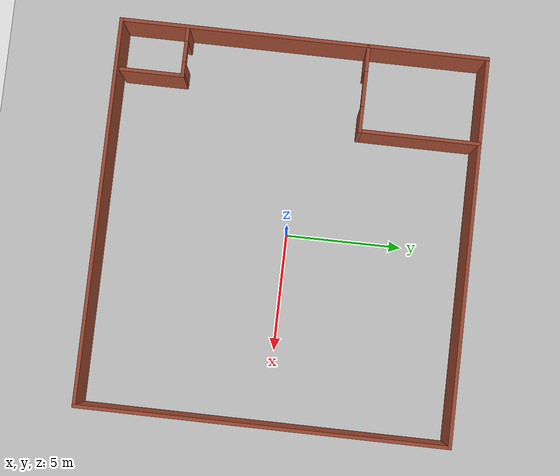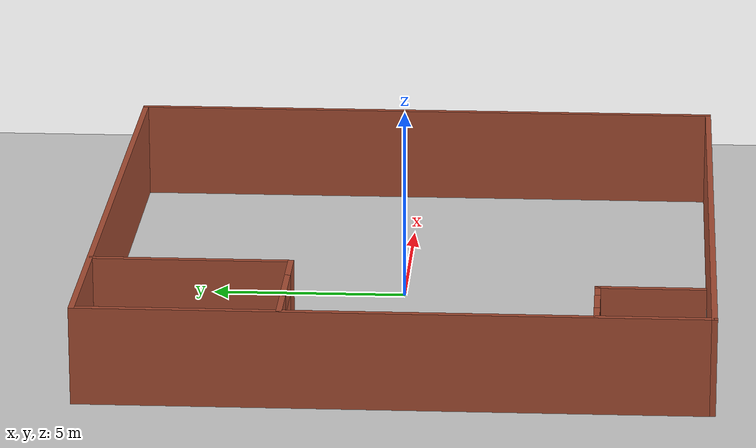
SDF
<sdf version="1.7">
 <world name="default">
  <light name="sun" type="directional">
   <pose>0 0 10 0 -0 0</pose>
   <diffuse>0.8 0.8 0.8 1</diffuse>
   <specular>0.2 0.2 0.2 1</specular>
   <attenuation>
    <range>1000</range>
    <constant>0.9</constant>
    <linear>0.01</linear>
    <quadratic>0.001</quadratic>
   </attenuation>
   <direction>-0.5 0.1 -0.9</direction>
   <spot><inner_angle>0</inner_angle><outer_angle>0</outer_angle><falloff>0</falloff></spot>
  </light>
  <model name="ground_plane">
   <static>1</static>
   <link name="link">
    <collision name="collision">
     <geometry><plane><normal>0 0 1</normal><size>100 100</size></plane></geometry>
     <surface>
      <contact><collide_bitmask>65535</collide_bitmask></contact>
      <friction><ode><mu>100</mu><mu2>50</mu2></ode></friction>
     </surface>
    </collision>
    <visual name="visual">
     <cast_shadows>0</cast_shadows>
     <geometry><plane><normal>0 0 1</normal><size>100 100</size></plane></geometry>
     <material>
      <script><uri>file://media/materials/scripts/gazebo.material</uri><name>Gazebo/Grey</name></script>
     </material>
    </visual>
   </link>
  </model>
  <gravity>0 0 -9.8</gravity>
  <magnetic_field>6e-06 2.3e-05 -4.2e-05</magnetic_field>
  <atmosphere type="adiabatic"/>
  <physics type="ode">
   <max_step_size>0.001</max_step_size>
   <real_time_factor>1</real_time_factor>
   <real_time_update_rate>1000</real_time_update_rate>
  </physics>
  <scene><ambient>0.4 0.4 0.4 1</ambient><background>0.7 0.7 0.7 1</background><shadows>1</shadows></scene>
  <spherical_coordinates>
   <surface_model>EARTH_WGS84</surface_model>
   <latitude_deg>0</latitude_deg>
   <longitude_deg>0</longitude_deg>
   <elevation>0</elevation>
   <heading_deg>0</heading_deg>
  </spherical_coordinates>
  <model name="test">
   <link name="Wall_16">
    <pose>8.175 0 0 0 -0 1.5708</pose>
    <inertial>
     <mass>1</mass>
     <inertia><ixx>1</ixx><ixy>0</ixy><ixz>0</ixz><iyy>1</iyy><iyz>0</iyz><izz>1</izz></inertia>
    </inertial>
    <visual name="Wall_16_Visual">
     <pose>0 0 1.25 0 -0 0</pose>
     <geometry><box><size>15.75 0.15 2.5</size></box></geometry>
     <material>
      <script><uri>file://media/materials/scripts/gazebo.material</uri><name>Gazebo/Bricks</name></script>
      <ambient>1 1 1 1</ambient>
      <shader type="pixel"><normal_map>__default__</normal_map></shader>
      <diffuse>1 1 1 1</diffuse>
      <specular>0.2 0.2 0.2 1</specular>
      <emissive>0 0 0 1</emissive>
     </material>
     <meta><layer>0</layer></meta>
    </visual>
    <collision name="Wall_16_Collision">
     <pose>0 0 1.25 0 -0 0</pose>
     <geometry><box><size>15.75 0.15 2.5</size></box></geometry>
     <surface>
      <friction>
       <ode><mu>1</mu><mu2>1</mu2><fdir1>0 0 0</fdir1><slip1>0</slip1><slip2>0</slip2></ode>
       <torsional>
        <coefficient>1</coefficient>
        <patch_radius>0</patch_radius>
        <surface_radius>0</surface_radius>
        <use_patch_radius>1</use_patch_radius>
        <ode><slip>0</slip></ode>
       </torsional>
      </friction>
      <bounce><restitution_coefficient>0</restitution_coefficient><threshold>1e+06</threshold></bounce>
      <contact>
       <collide_without_contact>0</collide_without_contact>
       <collide_without_contact_bitmask>1</collide_without_contact_bitmask>
       <collide_bitmask>1</collide_bitmask>
       <ode>
        <soft_cfm>0</soft_cfm>
        <soft_erp>0.2</soft_erp>
        <kp>1e+13</kp>
        <kd>1</kd>
        <max_vel>0.01</max_vel>
        <min_depth>0</min_depth>
       </ode>
       <bullet>
        <split_impulse>1</split_impulse>
        <split_impulse_penetration_threshold>-0.01</split_impulse_penetration_threshold>
        <soft_cfm>0</soft_cfm>
        <soft_erp>0.2</soft_erp>
        <kp>1e+13</kp>
        <kd>1</kd>
       </bullet>
      </contact>
     </surface>
    </collision>
   </link>
   <link name="Wall_24">
    <pose>0 7.8 0 0 -0 0</pose>
    <inertial>
     <mass>1</mass>
     <inertia><ixx>1</ixx><ixy>0</ixy><ixz>0</ixz><iyy>1</iyy><iyz>0</iyz><izz>1</izz></inertia>
    </inertial>
    <visual name="Wall_24_Visual">
     <pose>0 0 1.25 0 -0 0</pose>
     <geometry><box><size>16.5 0.15 2.5</size></box></geometry>
     <material>
      <script><uri>file://media/materials/scripts/gazebo.material</uri><name>Gazebo/Bricks</name></script>
      <ambient>1 1 1 1</ambient>
      <shader type="pixel"><normal_map>__default__</normal_map></shader>
      <diffuse>1 1 1 1</diffuse>
      <specular>0.2 0.2 0.2 1</specular>
      <emissive>0 0 0 1</emissive>
     </material>
     <meta><layer>0</layer></meta>
    </visual>
    <collision name="Wall_24_Collision">
     <pose>0 0 1.25 0 -0 0</pose>
     <geometry><box><size>16.5 0.15 2.5</size></box></geometry>
     <surface>
      <friction>
       <ode><mu>1</mu><mu2>1</mu2><fdir1>0 0 0</fdir1><slip1>0</slip1><slip2>0</slip2></ode>
       <torsional>
        <coefficient>1</coefficient>
        <patch_radius>0</patch_radius>
        <surface_radius>0</surface_radius>
        <use_patch_radius>1</use_patch_radius>
        <ode><slip>0</slip></ode>
       </torsional>
      </friction>
      <bounce><restitution_coefficient>0</restitution_coefficient><threshold>1e+06</threshold></bounce>
      <contact>
       <collide_without_contact>0</collide_without_contact>
       <collide_without_contact_bitmask>1</collide_without_contact_bitmask>
       <collide_bitmask>1</collide_bitmask>
       <ode>
        <soft_cfm>0</soft_cfm>
        <soft_erp>0.2</soft_erp>
        <kp>1e+13</kp>
        <kd>1</kd>
        <max_vel>0.01</max_vel>
        <min_depth>0</min_depth>
       </ode>
       <bullet>
        <split_impulse>1</split_impulse>
        <split_impulse_penetration_threshold>-0.01</split_impulse_penetration_threshold>
        <soft_cfm>0</soft_cfm>
        <soft_erp>0.2</soft_erp>
        <kp>1e+13</kp>
        <kd>1</kd>
       </bullet>
      </contact>
     </surface>
    </collision>
   </link>
   <link name="Wall_27">
    <pose>0 -7.8 0 0 -0 3.14159</pose>
    <inertial>
     <mass>1</mass>
     <inertia><ixx>1</ixx><ixy>0</ixy><ixz>0</ixz><iyy>1</iyy><iyz>0</iyz><izz>1</izz></inertia>
    </inertial>
    <visual name="Wall_27_Visual">
     <pose>0 0 1.25 0 -0 0</pose>
     <geometry><box><size>16.5 0.15 2.5</size></box></geometry>
     <material>
      <script><uri>file://media/materials/scripts/gazebo.material</uri><name>Gazebo/Bricks</name></script>
      <ambient>1 1 1 1</ambient>
      <shader type="pixel"><normal_map>__default__</normal_map></shader>
      <diffuse>1 1 1 1</diffuse>
      <specular>0.2 0.2 0.2 1</specular>
      <emissive>0 0 0 1</emissive>
     </material>
     <meta><layer>0</layer></meta>
    </visual>
    <collision name="Wall_27_Collision">
     <pose>0 0 1.25 0 -0 0</pose>
     <geometry><box><size>16.5 0.15 2.5</size></box></geometry>
     <surface>
      <friction>
       <ode><mu>1</mu><mu2>1</mu2><fdir1>0 0 0</fdir1><slip1>0</slip1><slip2>0</slip2></ode>
       <torsional>
        <coefficient>1</coefficient>
        <patch_radius>0</patch_radius>
        <surface_radius>0</surface_radius>
        <use_patch_radius>1</use_patch_radius>
        <ode><slip>0</slip></ode>
       </torsional>
      </friction>
      <bounce><restitution_coefficient>0</restitution_coefficient><threshold>1e+06</threshold></bounce>
      <contact>
       <collide_without_contact>0</collide_without_contact>
       <collide_without_contact_bitmask>1</collide_without_contact_bitmask>
       <collide_bitmask>1</collide_bitmask>
       <ode>
        <soft_cfm>0</soft_cfm>
        <soft_erp>0.2</soft_erp>
        <kp>1e+13</kp>
        <kd>1</kd>
        <max_vel>0.01</max_vel>
        <min_depth>0</min_depth>
       </ode>
       <bullet>
        <split_impulse>1</split_impulse>
        <split_impulse_penetration_threshold>-0.01</split_impulse_penetration_threshold>
        <soft_cfm>0</soft_cfm>
        <soft_erp>0.2</soft_erp>
        <kp>1e+13</kp>
        <kd>1</kd>
       </bullet>
      </contact>
     </surface>
    </collision>
   </link>
   <link name="Wall_29">
    <pose>-8.175 0 0 0 -0 1.5708</pose>
    <inertial>
     <mass>1</mass>
     <inertia><ixx>1</ixx><ixy>0</ixy><ixz>0</ixz><iyy>1</iyy><iyz>0</iyz><izz>1</izz></inertia>
    </inertial>
    <visual name="Wall_29_Visual">
     <pose>0 0 1.25 0 -0 0</pose>
     <geometry><box><size>15.75 0.15 2.5</size></box></geometry>
     <material>
      <script><uri>file://media/materials/scripts/gazebo.material</uri><name>Gazebo/Bricks</name></script>
      <ambient>1 1 1 1</ambient>
      <shader type="pixel"><normal_map>__default__</normal_map></shader>
      <diffuse>1 1 1 1</diffuse>
      <specular>0.2 0.2 0.2 1</specular>
      <emissive>0 0 0 1</emissive>
     </material>
     <meta><layer>0</layer></meta>
    </visual>
    <collision name="Wall_29_Collision">
     <pose>0 0 1.25 0 -0 0</pose>
     <geometry><box><size>15.75 0.15 2.5</size></box></geometry>
     <surface>
      <friction>
       <ode><mu>1</mu><mu2>1</mu2><fdir1>0 0 0</fdir1><slip1>0</slip1><slip2>0</slip2></ode>
       <torsional>
        <coefficient>1</coefficient>
        <patch_radius>0</patch_radius>
        <surface_radius>0</surface_radius>
        <use_patch_radius>1</use_patch_radius>
        <ode><slip>0</slip></ode>
       </torsional>
      </friction>
      <bounce><restitution_coefficient>0</restitution_coefficient><threshold>1e+06</threshold></bounce>
      <contact>
       <collide_without_contact>0</collide_without_contact>
       <collide_without_contact_bitmask>1</collide_without_contact_bitmask>
       <collide_bitmask>1</collide_bitmask>
       <ode>
        <soft_cfm>0</soft_cfm>
        <soft_erp>0.2</soft_erp>
        <kp>1e+13</kp>
        <kd>1</kd>
        <max_vel>0.01</max_vel>
        <min_depth>0</min_depth>
       </ode>
       <bullet>
        <split_impulse>1</split_impulse>
        <split_impulse_penetration_threshold>-0.01</split_impulse_penetration_threshold>
        <soft_cfm>0</soft_cfm>
        <soft_erp>0.2</soft_erp>
        <kp>1e+13</kp>
        <kd>1</kd>
       </bullet>
      </contact>
     </surface>
    </collision>
   </link>
   <static>1</static>
   <pose>-0.003081 -0.141548 0 0 -0 0</pose>
  </model>
  <model name="Untitled">
   <link name="Wall_18">
    <pose>-1.97631 -6.34689 0 0 0 -1.5708</pose>
    <inertial>
     <mass>1</mass>
     <inertia><ixx>1</ixx><ixy>0</ixy><ixz>0</ixz><iyy>1</iyy><iyz>0</iyz><izz>1</izz></inertia>
    </inertial>
    <visual name="Wall_18_Visual">
     <pose>0 0 1.25 0 -0 0</pose>
     <geometry><box><size>2.75 0.15 2.5</size></box></geometry>
     <material>
      <script><uri>file://media/materials/scripts/gazebo.material</uri><name>Gazebo/Bricks</name></script>
      <ambient>1 1 1 1</ambient>
      <shader type="pixel"><normal_map>__default__</normal_map></shader>
      <diffuse>1 1 1 1</diffuse>
      <specular>0.2 0.2 0.2 1</specular>
      <emissive>0 0 0 1</emissive>
     </material>
     <meta><layer>0</layer></meta>
    </visual>
    <collision name="Wall_18_Collision">
     <pose>0 0 1.25 0 -0 0</pose>
     <geometry><box><size>2.75 0.15 2.5</size></box></geometry>
     <surface>
      <friction>
       <ode><mu>1</mu><mu2>1</mu2><fdir1>0 0 0</fdir1><slip1>0</slip1><slip2>0</slip2></ode>
       <torsional>
        <coefficient>1</coefficient>
        <patch_radius>0</patch_radius>
        <surface_radius>0</surface_radius>
        <use_patch_radius>1</use_patch_radius>
        <ode><slip>0</slip></ode>
       </torsional>
      </friction>
      <bounce><restitution_coefficient>0</restitution_coefficient><threshold>1e+06</threshold></bounce>
      <contact>
       <collide_without_contact>0</collide_without_contact>
       <collide_without_contact_bitmask>1</collide_without_contact_bitmask>
       <collide_bitmask>1</collide_bitmask>
       <ode>
        <soft_cfm>0</soft_cfm>
        <soft_erp>0.2</soft_erp>
        <kp>1e+13</kp>
        <kd>1</kd>
        <max_vel>0.01</max_vel>
        <min_depth>0</min_depth>
       </ode>
       <bullet>
        <split_impulse>1</split_impulse>
        <split_impulse_penetration_threshold>-0.01</split_impulse_penetration_threshold>
        <soft_cfm>0</soft_cfm>
        <soft_erp>0.2</soft_erp>
        <kp>1e+13</kp>
        <kd>1</kd>
       </bullet>
      </contact>
     </surface>
    </collision>
   </link>
   <link name="Wall_30">
    <pose>-2.99161 -5.04689 0 0 -0 3.14159</pose>
    <inertial>
     <mass>1</mass>
     <inertia><ixx>1</ixx><ixy>0</ixy><ixz>0</ixz><iyy>1</iyy><iyz>0</iyz><izz>1</izz></inertia>
    </inertial>
    <visual name="Wall_30_Visual_0">
     <pose>-0.76338 0 1.25 0 -0 0</pose>
     <geometry><box><size>0.653849 0.15 2.5</size></box></geometry>
     <material>
      <script><uri>file://media/materials/scripts/gazebo.material</uri><name>Gazebo/Bricks</name></script>
      <ambient>1 1 1 1</ambient>
      <shader type="pixel"><normal_map>__default__</normal_map></shader>
      <diffuse>1 1 1 1</diffuse>
      <specular>0.2 0.2 0.2 1</specular>
      <emissive>0 0 0 1</emissive>
     </material>
     <meta><layer>0</layer></meta>
    </visual>
    <visual name="Wall_30_Visual_1">
     <pose>0.776925 0 1.25 0 -0 0</pose>
     <geometry><box><size>0.626759 0.15 2.5</size></box></geometry>
     <material>
      <script><uri>file://media/materials/scripts/gazebo.material</uri><name>Gazebo/Bricks</name></script>
      <ambient>1 1 1 1</ambient>
      <shader type="pixel"><normal_map>__default__</normal_map></shader>
      <diffuse>0.7 0.7 0.7 1</diffuse>
      <specular>0.01 0.01 0.01 1</specular>
      <emissive>0 0 0 1</emissive>
     </material>
     <meta><layer>0</layer></meta>
    </visual>
    <visual name="Wall_30_Visual_2">
     <pose>0.013545 0 2.25 0 -0 0</pose>
     <geometry><box><size>0.9 0.15 0.5</size></box></geometry>
     <material>
      <script><uri>file://media/materials/scripts/gazebo.material</uri><name>Gazebo/Bricks</name></script>
      <ambient>1 1 1 1</ambient>
      <shader type="pixel"><normal_map>__default__</normal_map></shader>
      <diffuse>0.7 0.7 0.7 1</diffuse>
      <specular>0.01 0.01 0.01 1</specular>
      <emissive>0 0 0 1</emissive>
     </material>
     <meta><layer>0</layer></meta>
    </visual>
    <collision name="Wall_30_Collision_0">
     <pose>-0.76338 0 1.25 0 -0 0</pose>
     <geometry><box><size>0.653849 0.15 2.5</size></box></geometry>
     <surface>
      <friction>
       <ode><mu>1</mu><mu2>1</mu2><fdir1>0 0 0</fdir1><slip1>0</slip1><slip2>0</slip2></ode>
       <torsional>
        <coefficient>1</coefficient>
        <patch_radius>0</patch_radius>
        <surface_radius>0</surface_radius>
        <use_patch_radius>1</use_patch_radius>
        <ode><slip>0</slip></ode>
       </torsional>
      </friction>
      <bounce><restitution_coefficient>0</restitution_coefficient><threshold>1e+06</threshold></bounce>
      <contact>
       <collide_without_contact>0</collide_without_contact>
       <collide_without_contact_bitmask>1</collide_without_contact_bitmask>
       <collide_bitmask>1</collide_bitmask>
       <ode>
        <soft_cfm>0</soft_cfm>
        <soft_erp>0.2</soft_erp>
        <kp>1e+13</kp>
        <kd>1</kd>
        <max_vel>0.01</max_vel>
        <min_depth>0</min_depth>
       </ode>
       <bullet>
        <split_impulse>1</split_impulse>
        <split_impulse_penetration_threshold>-0.01</split_impulse_penetration_threshold>
        <soft_cfm>0</soft_cfm>
        <soft_erp>0.2</soft_erp>
        <kp>1e+13</kp>
        <kd>1</kd>
       </bullet>
      </contact>
     </surface>
    </collision>
    <collision name="Wall_30_Collision_1">
     <pose>0.776925 0 1.25 0 -0 0</pose>
     <geometry><box><size>0.626759 0.15 2.5</size></box></geometry>
     <surface>
      <friction>
       <ode><mu>1</mu><mu2>1</mu2><fdir1>0 0 0</fdir1><slip1>0</slip1><slip2>0</slip2></ode>
       <torsional>
        <coefficient>1</coefficient>
        <patch_radius>0</patch_radius>
        <surface_radius>0</surface_radius>
        <use_patch_radius>1</use_patch_radius>
        <ode><slip>0</slip></ode>
       </torsional>
      </friction>
      <bounce><restitution_coefficient>0</restitution_coefficient><threshold>1e+06</threshold></bounce>
      <contact>
       <collide_without_contact>0</collide_without_contact>
       <collide_without_contact_bitmask>1</collide_without_contact_bitmask>
       <collide_bitmask>1</collide_bitmask>
       <ode>
        <soft_cfm>0</soft_cfm>
        <soft_erp>0.2</soft_erp>
        <kp>1e+13</kp>
        <kd>1</kd>
        <max_vel>0.01</max_vel>
        <min_depth>0</min_depth>
       </ode>
       <bullet>
        <split_impulse>1</split_impulse>
        <split_impulse_penetration_threshold>-0.01</split_impulse_penetration_threshold>
        <soft_cfm>0</soft_cfm>
        <soft_erp>0.2</soft_erp>
        <kp>1e+13</kp>
        <kd>1</kd>
       </bullet>
      </contact>
     </surface>
    </collision>
    <collision name="Wall_30_Collision_2">
     <pose>0.013545 0 2.25 0 -0 0</pose>
     <geometry><box><size>0.9 0.15 0.5</size></box></geometry>
     <surface>
      <friction>
       <ode><mu>1</mu><mu2>1</mu2><fdir1>0 0 0</fdir1><slip1>0</slip1><slip2>0</slip2></ode>
       <torsional>
        <coefficient>1</coefficient>
        <patch_radius>0</patch_radius>
        <surface_radius>0</surface_radius>
        <use_patch_radius>1</use_patch_radius>
        <ode><slip>0</slip></ode>
       </torsional>
      </friction>
      <bounce><restitution_coefficient>0</restitution_coefficient><threshold>1e+06</threshold></bounce>
      <contact>
       <collide_without_contact>0</collide_without_contact>
       <collide_without_contact_bitmask>1</collide_without_contact_bitmask>
       <collide_bitmask>1</collide_bitmask>
       <ode>
        <soft_cfm>0</soft_cfm>
        <soft_erp>0.2</soft_erp>
        <kp>1e+13</kp>
        <kd>1</kd>
        <max_vel>0.01</max_vel>
        <min_depth>0</min_depth>
       </ode>
       <bullet>
        <split_impulse>1</split_impulse>
        <split_impulse_penetration_threshold>-0.01</split_impulse_penetration_threshold>
        <soft_cfm>0</soft_cfm>
        <soft_erp>0.2</soft_erp>
        <kp>1e+13</kp>
        <kd>1</kd>
       </bullet>
      </contact>
     </surface>
    </collision>
   </link>
   <link name="Wall_8">
    <pose>-0.449656 5.22189 0 0 0 -1.5708</pose>
    <inertial>
     <mass>1</mass>
     <inertia><ixx>1</ixx><ixy>0</ixy><ixz>0</ixz><iyy>1</iyy><iyz>0</iyz><izz>1</izz></inertia>
    </inertial>
    <visual name="Wall_8_Visual">
     <pose>0 0 1.25 0 -0 0</pose>
     <geometry><box><size>5 0.15 2.5</size></box></geometry>
     <material>
      <script><uri>file://media/materials/scripts/gazebo.material</uri><name>Gazebo/Bricks</name></script>
      <ambient>1 1 1 1</ambient>
      <shader type="pixel"><normal_map>__default__</normal_map></shader>
      <diffuse>1 1 1 1</diffuse>
      <specular>0.2 0.2 0.2 1</specular>
      <emissive>0 0 0 1</emissive>
     </material>
     <meta><layer>0</layer></meta>
    </visual>
    <collision name="Wall_8_Collision">
     <pose>0 0 1.25 0 -0 0</pose>
     <geometry><box><size>5 0.15 2.5</size></box></geometry>
     <surface>
      <friction>
       <ode><mu>1</mu><mu2>1</mu2><fdir1>0 0 0</fdir1><slip1>0</slip1><slip2>0</slip2></ode>
       <torsional>
        <coefficient>1</coefficient>
        <patch_radius>0</patch_radius>
        <surface_radius>0</surface_radius>
        <use_patch_radius>1</use_patch_radius>
        <ode><slip>0</slip></ode>
       </torsional>
      </friction>
      <bounce><restitution_coefficient>0</restitution_coefficient><threshold>1e+06</threshold></bounce>
      <contact>
       <collide_without_contact>0</collide_without_contact>
       <collide_without_contact_bitmask>1</collide_without_contact_bitmask>
       <collide_bitmask>1</collide_bitmask>
       <ode>
        <soft_cfm>0</soft_cfm>
        <soft_erp>0.2</soft_erp>
        <kp>1e+13</kp>
        <kd>1</kd>
        <max_vel>0.01</max_vel>
        <min_depth>0</min_depth>
       </ode>
       <bullet>
        <split_impulse>1</split_impulse>
        <split_impulse_penetration_threshold>-0.01</split_impulse_penetration_threshold>
        <soft_cfm>0</soft_cfm>
        <soft_erp>0.2</soft_erp>
        <kp>1e+13</kp>
        <kd>1</kd>
       </bullet>
      </contact>
     </surface>
    </collision>
   </link>
   <static>1</static>
   <pose>-4.08192 -0.047839 0 0 -0 0</pose>
  </model>
  <model name="Untitled_0">
   <link name="Wall_36">
    <pose>-2.22794 1.26267 0 0 -0 0</pose>
    <inertial>
     <mass>1</mass>
     <inertia><ixx>1</ixx><ixy>0</ixy><ixz>0</ixz><iyy>1</iyy><iyz>0</iyz><izz>1</izz></inertia>
    </inertial>
    <visual name="Wall_36_Visual_2">
     <pose>0.005564 0 2.25 0 -0 0</pose>
     <geometry><box><size>1.5 0.15 0.5</size></box></geometry>
     <material>
      <script><uri>file://media/materials/scripts/gazebo.material</uri><name>Gazebo/Bricks</name></script>
      <ambient>1 1 1 1</ambient>
      <shader type="pixel"><normal_map>__default__</normal_map></shader>
      <diffuse>0.7 0.7 0.7 1</diffuse>
      <specular>0.01 0.01 0.01 1</specular>
      <emissive>0 0 0 1</emissive>
     </material>
     <meta><layer>0</layer></meta>
    </visual>
    <visual name="Wall_36_Visual_1">
     <pose>1.31528 0 1.25 0 -0 0</pose>
     <geometry><box><size>1.11944 0.15 2.5</size></box></geometry>
     <material>
      <script><uri>file://media/materials/scripts/gazebo.material</uri><name>Gazebo/Bricks</name></script>
      <ambient>1 1 1 1</ambient>
      <shader type="pixel"><normal_map>__default__</normal_map></shader>
      <diffuse>0.7 0.7 0.7 1</diffuse>
      <specular>0.01 0.01 0.01 1</specular>
      <emissive>0 0 0 1</emissive>
     </material>
     <meta><layer>0</layer></meta>
    </visual>
    <visual name="Wall_36_Visual_0">
     <pose>-1.30972 0 1.25 0 -0 0</pose>
     <geometry><box><size>1.13056 0.15 2.5</size></box></geometry>
     <material>
      <script><uri>file://media/materials/scripts/gazebo.material</uri><name>Gazebo/Bricks</name></script>
      <ambient>1 1 1 1</ambient>
      <shader type="pixel"><normal_map>__default__</normal_map></shader>
      <diffuse>1 1 1 1</diffuse>
      <specular>0.2 0.2 0.2 1</specular>
      <emissive>0 0 0 1</emissive>
     </material>
     <meta><layer>0</layer></meta>
    </visual>
    <collision name="Wall_36_Collision_0">
     <pose>-1.30972 0 1.25 0 -0 0</pose>
     <geometry><box><size>1.13056 0.15 2.5</size></box></geometry>
     <surface>
      <friction>
       <ode><mu>1</mu><mu2>1</mu2><fdir1>0 0 0</fdir1><slip1>0</slip1><slip2>0</slip2></ode>
       <torsional>
        <coefficient>1</coefficient>
        <patch_radius>0</patch_radius>
        <surface_radius>0</surface_radius>
        <use_patch_radius>1</use_patch_radius>
        <ode><slip>0</slip></ode>
       </torsional>
      </friction>
      <bounce><restitution_coefficient>0</restitution_coefficient><threshold>1e+06</threshold></bounce>
      <contact>
       <collide_without_contact>0</collide_without_contact>
       <collide_without_contact_bitmask>1</collide_without_contact_bitmask>
       <collide_bitmask>1</collide_bitmask>
       <ode>
        <soft_cfm>0</soft_cfm>
        <soft_erp>0.2</soft_erp>
        <kp>1e+13</kp>
        <kd>1</kd>
        <max_vel>0.01</max_vel>
        <min_depth>0</min_depth>
       </ode>
       <bullet>
        <split_impulse>1</split_impulse>
        <split_impulse_penetration_threshold>-0.01</split_impulse_penetration_threshold>
        <soft_cfm>0</soft_cfm>
        <soft_erp>0.2</soft_erp>
        <kp>1e+13</kp>
        <kd>1</kd>
       </bullet>
      </contact>
     </surface>
    </collision>
    <collision name="Wall_36_Collision_1">
     <pose>1.31528 0 1.25 0 -0 0</pose>
     <geometry><box><size>1.11944 0.15 2.5</size></box></geometry>
     <surface>
      <friction>
       <ode><mu>1</mu><mu2>1</mu2><fdir1>0 0 0</fdir1><slip1>0</slip1><slip2>0</slip2></ode>
       <torsional>
        <coefficient>1</coefficient>
        <patch_radius>0</patch_radius>
        <surface_radius>0</surface_radius>
        <use_patch_radius>1</use_patch_radius>
        <ode><slip>0</slip></ode>
       </torsional>
      </friction>
      <bounce><restitution_coefficient>0</restitution_coefficient><threshold>1e+06</threshold></bounce>
      <contact>
       <collide_without_contact>0</collide_without_contact>
       <collide_without_contact_bitmask>1</collide_without_contact_bitmask>
       <collide_bitmask>1</collide_bitmask>
       <ode>
        <soft_cfm>0</soft_cfm>
        <soft_erp>0.2</soft_erp>
        <kp>1e+13</kp>
        <kd>1</kd>
        <max_vel>0.01</max_vel>
        <min_depth>0</min_depth>
       </ode>
       <bullet>
        <split_impulse>1</split_impulse>
        <split_impulse_penetration_threshold>-0.01</split_impulse_penetration_threshold>
        <soft_cfm>0</soft_cfm>
        <soft_erp>0.2</soft_erp>
        <kp>1e+13</kp>
        <kd>1</kd>
       </bullet>
      </contact>
     </surface>
    </collision>
    <collision name="Wall_36_Collision_2">
     <pose>0.005564 0 2.25 0 -0 0</pose>
     <geometry><box><size>1.5 0.15 0.5</size></box></geometry>
     <surface>
      <friction>
       <ode><mu>1</mu><mu2>1</mu2><fdir1>0 0 0</fdir1><slip1>0</slip1><slip2>0</slip2></ode>
       <torsional>
        <coefficient>1</coefficient>
        <patch_radius>0</patch_radius>
        <surface_radius>0</surface_radius>
        <use_patch_radius>1</use_patch_radius>
        <ode><slip>0</slip></ode>
       </torsional>
      </friction>
      <bounce><restitution_coefficient>0</restitution_coefficient><threshold>1e+06</threshold></bounce>
      <contact>
       <collide_without_contact>0</collide_without_contact>
       <collide_without_contact_bitmask>1</collide_without_contact_bitmask>
       <collide_bitmask>1</collide_bitmask>
       <ode>
        <soft_cfm>0</soft_cfm>
        <soft_erp>0.2</soft_erp>
        <kp>1e+13</kp>
        <kd>1</kd>
        <max_vel>0.01</max_vel>
        <min_depth>0</min_depth>
       </ode>
       <bullet>
        <split_impulse>1</split_impulse>
        <split_impulse_penetration_threshold>-0.01</split_impulse_penetration_threshold>
        <soft_cfm>0</soft_cfm>
        <soft_erp>0.2</soft_erp>
        <kp>1e+13</kp>
        <kd>1</kd>
       </bullet>
      </contact>
     </surface>
    </collision>
   </link>
   <static>1</static>
   <pose>-4.10294 1.33767 0 0 -0 0</pose>
  </model>
  <light name="user_spot_light_0" type="spot">
   <pose>4.54179 3.89959 1 0 -0 0</pose>
   <diffuse>0.5 0.5 0.5 1</diffuse>
   <specular>0.1 0.1 0.1 1</specular>
   <direction>0 0 -1</direction>
   <attenuation>
    <range>20</range>
    <constant>0.5</constant>
    <linear>0.01</linear>
    <quadratic>0.001</quadratic>
   </attenuation>
   <cast_shadows>0</cast_shadows>
   <spot><inner_angle>0.6</inner_angle><outer_angle>1</outer_angle><falloff>1</falloff></spot>
  </light>
  <light name="user_spot_light_0_clone" type="spot">
   <pose>-0.736565 3.62296 3.00358 0 -0 0</pose>
   <diffuse>0.5 0.5 0.5 1</diffuse>
   <specular>0.1 0.1 0.1 1</specular>
   <direction>0 0 -1</direction>
   <attenuation>
    <range>20</range>
    <constant>0.5</constant>
    <linear>0.01</linear>
    <quadratic>0.001</quadratic>
   </attenuation>
   <cast_shadows>0</cast_shadows>
   <spot><inner_angle>0.6</inner_angle><outer_angle>1</outer_angle><falloff>1</falloff></spot>
  </light>
  <light name="user_spot_light_0_clone_1" type="spot">
   <pose>4.31827 -1.0884 3.00358 0 -0 0</pose>
   <diffuse>0.5 0.5 0.5 1</diffuse>
   <specular>0.1 0.1 0.1 1</specular>
   <direction>0 0 -1</direction>
   <attenuation>
    <range>20</range>
    <constant>0.5</constant>
    <linear>0.01</linear>
    <quadratic>0.001</quadratic>
   </attenuation>
   <cast_shadows>0</cast_shadows>
   <spot><inner_angle>0.6</inner_angle><outer_angle>1</outer_angle><falloff>1</falloff></spot>
  </light>
  <light name="user_spot_light_0_clone_0" type="spot">
   <pose>-0.754798 -1.26411 3.00358 0 -0 0</pose>
   <diffuse>0.5 0.5 0.5 1</diffuse>
   <specular>0.1 0.1 0.1 1</specular>
   <direction>0 0 -1</direction>
   <attenuation>
    <range>20</range>
    <constant>0.5</constant>
    <linear>0.01</linear>
    <quadratic>0.001</quadratic>
   </attenuation>
   <cast_shadows>0</cast_shadows>
   <spot><inner_angle>0.6</inner_angle><outer_angle>1</outer_angle><falloff>1</falloff></spot>
  </light>
  <light name="user_spot_light_0_clone_2" type="spot">
   <pose>-3.98428 -6.30654 3.00358 0 -0 0</pose>
   <diffuse>0.5 0.5 0.5 1</diffuse>
   <specular>0.1 0.1 0.1 1</specular>
   <direction>0 0 -1</direction>
   <attenuation>
    <range>20</range>
    <constant>0.5</constant>
    <linear>0.01</linear>
    <quadratic>0.001</quadratic>
   </attenuation>
   <cast_shadows>0</cast_shadows>
   <spot><inner_angle>0.6</inner_angle><outer_angle>1</outer_angle><falloff>1</falloff></spot>
  </light>
  <light name="user_spot_light_0_clone_3" type="spot">
   <pose>-0.840133 -6.03264 3.00358 0 -0 0</pose>
   <diffuse>0.5 0.5 0.5 1</diffuse>
   <specular>0.1 0.1 0.1 1</specular>
   <direction>0 0 -1</direction>
   <attenuation>
    <range>20</range>
    <constant>0.5</constant>
    <linear>0.01</linear>
    <quadratic>0.001</quadratic>
   </attenuation>
   <cast_shadows>0</cast_shadows>
   <spot><inner_angle>0.6</inner_angle><outer_angle>1</outer_angle><falloff>1</falloff></spot>
  </light>
  <light name="user_spot_light_0_clone_4" type="spot">
   <pose>2.71615 -5.87513 3.00358 0 -0 0</pose>
   <diffuse>0.5 0.5 0.5 1</diffuse>
   <specular>0.1 0.1 0.1 1</specular>
   <direction>0 0 -1</direction>
   <attenuation>
    <range>20</range>
    <constant>0.5</constant>
    <linear>0.01</linear>
    <quadratic>0.001</quadratic>
   </attenuation>
   <cast_shadows>0</cast_shadows>
   <spot><inner_angle>0.6</inner_angle><outer_angle>1</outer_angle><falloff>1</falloff></spot>
  </light>
  <light name="user_spot_light_0_clone_5" type="spot">
   <pose>6.46915 -6.20987 3.00358 0 -0 0</pose>
   <diffuse>0.5 0.5 0.5 1</diffuse>
   <specular>0.1 0.1 0.1 1</specular>
   <direction>0 0 -1</direction>
   <attenuation>
    <range>20</range>
    <constant>0.5</constant>
    <linear>0.01</linear>
    <quadratic>0.001</quadratic>
   </attenuation>
   <cast_shadows>0</cast_shadows>
   <spot><inner_angle>0.6</inner_angle><outer_angle>1</outer_angle><falloff>1</falloff></spot>
  </light>
 </world>
</sdf>
